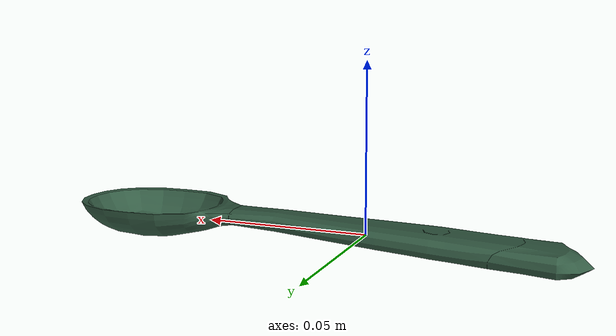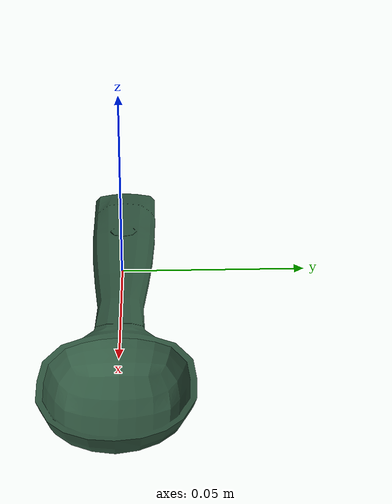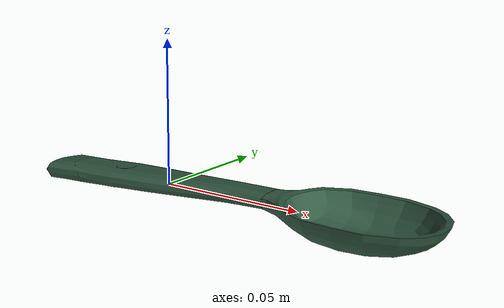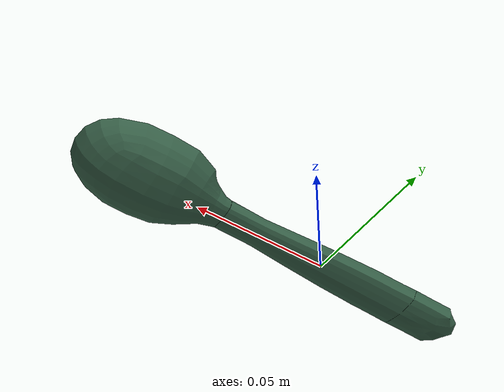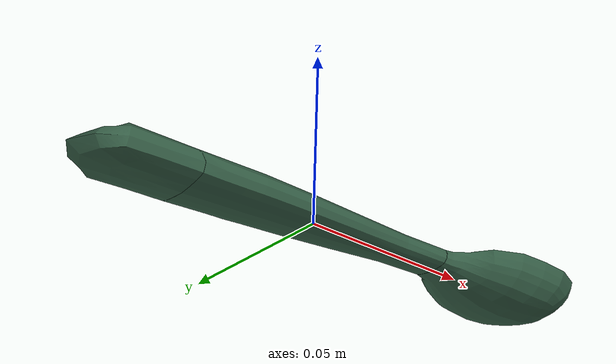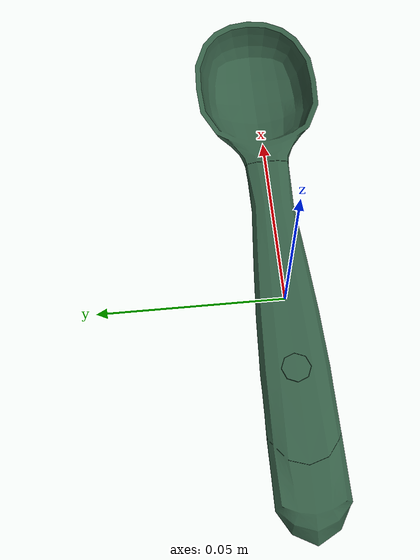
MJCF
<mujoco model="scene_spoon">
  <compiler angle="degree" meshdir="meshes" texturedir="textures"/>
  <option gravity="0 0 -9.81"/>
  <default>
    <joint armature="0.01" damping="0.5"/>
    <default class="visual">
      <geom contype="0" conaffinity="0" group="2"/>
    </default>
    <default class="collision">
      <geom rgba="0.9 0.9 0.0 0.2" group="3"/>
    </default>
  </default>
  <asset>
    <material name="M_mat0_012" rgba="0.2024 0.3591 0.2669 1.0000"/>
    <mesh name="ImagetostlMesh0011" file="ImagetostlMesh0011.obj" inertia="shell"/>
  </asset>
  <worldbody>
    <body name="imagetostl_mesh_0_011" pos="0.000000 0.000000 0.000000" quat="0.500000 0.500000 -0.500000 -0.500000">
      <freejoint/>
      <geom type="mesh" mesh="ImagetostlMesh0011" class="visual" material="M_mat0_012"/>
      <geom type="mesh" mesh="ImagetostlMesh0011" class="collision"/>
    </body>
  </worldbody>
</mujoco>
